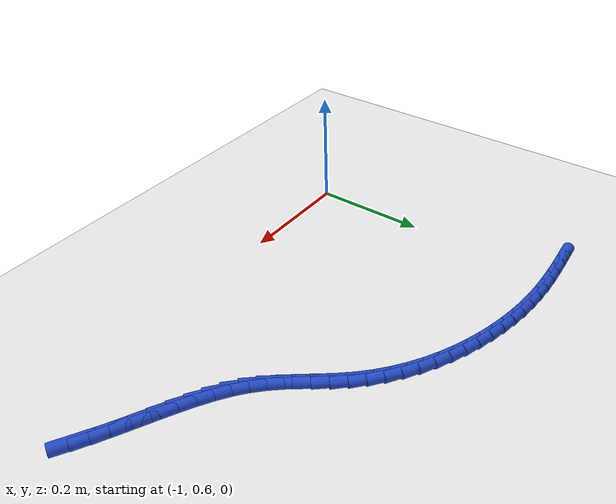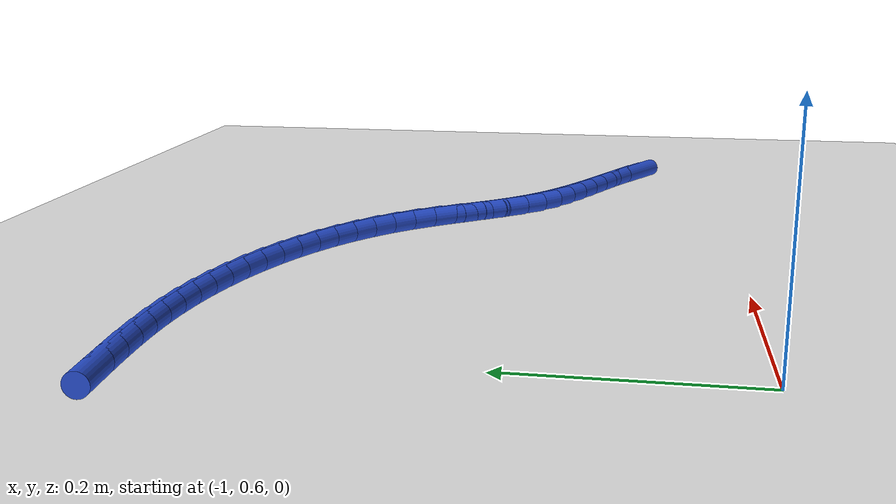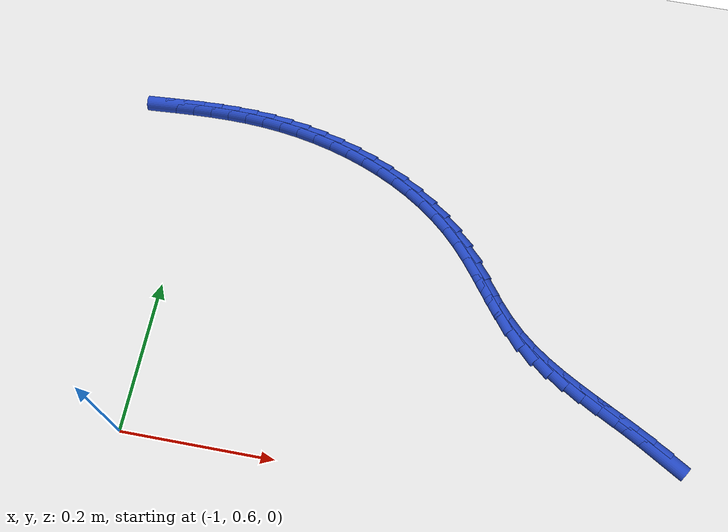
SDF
<sdf version="1.6">
 <world name="default">
  <model name="ground_plane">
   <static>1</static>
   <link name="link">
    <collision name="collision">
     <geometry><plane><normal>0 0 1</normal><size>100 100</size></plane></geometry>
     <surface><friction><ode><mu>100</mu><mu2>50</mu2></ode></friction></surface>
    </collision>
    <visual name="visual">
     <cast_shadows>0</cast_shadows>
     <geometry><plane><normal>0 0 1</normal><size>100 100</size></plane></geometry>
     <material>
      <script><uri>file://media/materials/scripts/gazebo.material</uri><name>Gazebo/WhiteGlow</name></script>
     </material>
    </visual>
   </link>
  </model>
  <model name="line">
   <link name="link_32">
    <pose>-0.3326681531695667 0.6948434382160888 0.01 0 1.57 -0.5361088494481401</pose>
    <collision name="collision">
     <geometry><cylinder><radius>0.01</radius><length>0.08</length></cylinder></geometry>
    </collision>
    <visual name="visual">
     <material>
      <script><name>Gazebo/Blue</name><uri>file://media/materials/scripts/gazebo.material</uri></script>
     </material>
     <geometry><cylinder><radius>0.01</radius><length>0.08</length></cylinder></geometry>
    </visual>
   </link>
   <link name="link_33">
    <pose>-0.3549061899537911 0.7080562256418568 0.01 0 1.57 -0.5080522299276821</pose>
    <collision name="collision">
     <geometry><cylinder><radius>0.01</radius><length>0.08</length></cylinder></geometry>
    </collision>
    <visual name="visual">
     <material>
      <script><name>Gazebo/Blue</name><uri>file://media/materials/scripts/gazebo.material</uri></script>
     </material>
     <geometry><cylinder><radius>0.01</radius><length>0.08</length></cylinder></geometry>
    </visual>
   </link>
   <link name="link_34">
    <pose>-0.377488407385569 0.7206301014757267 0.01 0 1.57 -0.48785186965999316</pose>
    <collision name="collision">
     <geometry><cylinder><radius>0.01</radius><length>0.08</length></cylinder></geometry>
    </collision>
    <visual name="visual">
     <material>
      <script><name>Gazebo/Blue</name><uri>file://media/materials/scripts/gazebo.material</uri></script>
     </material>
     <geometry><cylinder><radius>0.01</radius><length>0.08</length></cylinder></geometry>
    </visual>
   </link>
   <link name="link_35">
    <pose>-0.40026704934569296 0.7327171782866542 0.01 0 1.57 -0.48254880784526105</pose>
    <collision name="collision">
     <geometry><cylinder><radius>0.01</radius><length>0.08</length></cylinder></geometry>
    </collision>
    <visual name="visual">
     <material>
      <script><name>Gazebo/Blue</name><uri>file://media/materials/scripts/gazebo.material</uri></script>
     </material>
     <geometry><cylinder><radius>0.01</radius><length>0.08</length></cylinder></geometry>
    </visual>
   </link>
   <link name="link_36">
    <pose>-0.42300218854203875 0.7446270896594379 0.01 0 1.57 -0.4926712706315808</pose>
    <collision name="collision">
     <geometry><cylinder><radius>0.01</radius><length>0.08</length></cylinder></geometry>
    </collision>
    <visual name="visual">
     <material>
      <script><name>Gazebo/Blue</name><uri>file://media/materials/scripts/gazebo.material</uri></script>
     </material>
     <geometry><cylinder><radius>0.01</radius><length>0.08</length></cylinder></geometry>
    </visual>
   </link>
   <link name="link_37">
    <pose>-0.44544933649459584 0.7566772642727891 0.01 0 1.57 -0.5186368232506255</pose>
    <collision name="collision">
     <geometry><cylinder><radius>0.01</radius><length>0.08</length></cylinder></geometry>
    </collision>
    <visual name="visual">
     <material>
      <script><name>Gazebo/Blue</name><uri>file://media/materials/scripts/gazebo.material</uri></script>
     </material>
     <geometry><cylinder><radius>0.01</radius><length>0.08</length></cylinder></geometry>
    </visual>
   </link>
   <link name="link_38">
    <pose>-0.46736400472335476 0.7691851308054202 0.01 0 1.57 -0.5610424379605093</pose>
    <collision name="collision">
     <geometry><cylinder><radius>0.01</radius><length>0.08</length></cylinder></geometry>
    </collision>
    <visual name="visual">
     <material>
      <script><name>Gazebo/Blue</name><uri>file://media/materials/scripts/gazebo.material</uri></script>
     </material>
     <geometry><cylinder><radius>0.01</radius><length>0.08</length></cylinder></geometry>
    </visual>
   </link>
   <link name="link_39">
    <pose>-0.4885017047483057 0.7824681179360428 0.01 0 1.57 -0.6204729936003492</pose>
    <collision name="collision">
     <geometry><cylinder><radius>0.01</radius><length>0.08</length></cylinder></geometry>
    </collision>
    <visual name="visual">
     <material>
      <script><name>Gazebo/Blue</name><uri>file://media/materials/scripts/gazebo.material</uri></script>
     </material>
     <geometry><cylinder><radius>0.01</radius><length>0.08</length></cylinder></geometry>
    </visual>
   </link>
   <link name="link_40">
    <pose>-0.5086179480894385 0.7968436543433686 0.01 0 1.57 -0.6971420461137727</pose>
    <collision name="collision">
     <geometry><cylinder><radius>0.01</radius><length>0.08</length></cylinder></geometry>
    </collision>
    <visual name="visual">
     <material>
      <script><name>Gazebo/Blue</name><uri>file://media/materials/scripts/gazebo.material</uri></script>
     </material>
     <geometry><cylinder><radius>0.01</radius><length>0.08</length></cylinder></geometry>
    </visual>
   </link>
   <link name="link_41">
    <pose>-0.5274682462667437 0.8126291687061098 0.01 0 1.57 -0.7883861440349522</pose>
    <collision name="collision">
     <geometry><cylinder><radius>0.01</radius><length>0.08</length></cylinder></geometry>
    </collision>
    <visual name="visual">
     <material>
      <script><name>Gazebo/Blue</name><uri>file://media/materials/scripts/gazebo.material</uri></script>
     </material>
     <geometry><cylinder><radius>0.01</radius><length>0.08</length></cylinder></geometry>
    </visual>
   </link>
   <link name="link_42">
    <pose>-0.5448404984559726 0.8301055482420612 0.01 0 1.57 -0.8661707938594106</pose>
    <collision name="collision">
     <geometry><cylinder><radius>0.01</radius><length>0.08</length></cylinder></geometry>
    </collision>
    <visual name="visual">
     <material>
      <script><name>Gazebo/Blue</name><uri>file://media/materials/scripts/gazebo.material</uri></script>
     </material>
     <geometry><cylinder><radius>0.01</radius><length>0.08</length></cylinder></geometry>
    </visual>
   </link>
   <link name="link_43">
    <pose>-0.5609580778750421 0.8490623553936387 0.01 0 1.57 -0.9116480694812913</pose>
    <collision name="collision">
     <geometry><cylinder><radius>0.01</radius><length>0.08</length></cylinder></geometry>
    </collision>
    <visual name="visual">
     <material>
      <script><name>Gazebo/Blue</name><uri>file://media/materials/scripts/gazebo.material</uri></script>
     </material>
     <geometry><cylinder><radius>0.01</radius><length>0.08</length></cylinder></geometry>
    </visual>
   </link>
   <link name="link_44">
    <pose>-0.5763561067219904 0.86893742096646 0.01 0 1.57 -0.9256283333738456</pose>
    <collision name="collision">
     <geometry><cylinder><radius>0.01</radius><length>0.08</length></cylinder></geometry>
    </collision>
    <visual name="visual">
     <material>
      <script><name>Gazebo/Blue</name><uri>file://media/materials/scripts/gazebo.material</uri></script>
     </material>
     <geometry><cylinder><radius>0.01</radius><length>0.08</length></cylinder></geometry>
    </visual>
   </link>
   <link name="link_45">
    <pose>-0.5915764800064579 0.8891609343229893 0.01 0 1.57 -0.9089006810155099</pose>
    <collision name="collision">
     <geometry><cylinder><radius>0.01</radius><length>0.08</length></cylinder></geometry>
    </collision>
    <visual name="visual">
     <material>
      <script><name>Gazebo/Blue</name><uri>file://media/materials/scripts/gazebo.material</uri></script>
     </material>
     <geometry><cylinder><radius>0.01</radius><length>0.08</length></cylinder></geometry>
    </visual>
   </link>
   <link name="link_46">
    <pose>-0.6071610927380837 0.9091630848256897 0.01 0 1.57 -0.8614447812594681</pose>
    <collision name="collision">
     <geometry><cylinder><radius>0.01</radius><length>0.08</length></cylinder></geometry>
    </collision>
    <visual name="visual">
     <material>
      <script><name>Gazebo/Blue</name><uri>file://media/materials/scripts/gazebo.material</uri></script>
     </material>
     <geometry><cylinder><radius>0.01</radius><length>0.08</length></cylinder></geometry>
    </visual>
   </link>
   <link name="link_47">
    <pose>-0.6236518338899116 0.9283740671181507 0.01 0 1.57 -0.7893991667646886</pose>
    <collision name="collision">
     <geometry><cylinder><radius>0.01</radius><length>0.08</length></cylinder></geometry>
    </collision>
    <visual name="visual">
     <material>
      <script><name>Gazebo/Blue</name><uri>file://media/materials/scripts/gazebo.material</uri></script>
     </material>
     <geometry><cylinder><radius>0.01</radius><length>0.08</length></cylinder></geometry>
    </visual>
   </link>
   <link name="link_48">
    <pose>-0.6414669135044594 0.9463322765463587 0.01 0 1.57 -0.7159673168174842</pose>
    <collision name="collision">
     <geometry><cylinder><radius>0.01</radius><length>0.08</length></cylinder></geometry>
    </collision>
    <visual name="visual">
     <material>
      <script><name>Gazebo/Blue</name><uri>file://media/materials/scripts/gazebo.material</uri></script>
     </material>
     <geometry><cylinder><radius>0.01</radius><length>0.08</length></cylinder></geometry>
    </visual>
   </link>
   <link name="link_49">
    <pose>-0.6605829537223217 0.9629624323107783 0.01 0 1.57 -0.6463857907514414</pose>
    <collision name="collision">
     <geometry><cylinder><radius>0.01</radius><length>0.08</length></cylinder></geometry>
    </collision>
    <visual name="visual">
     <material>
      <script><name>Gazebo/Blue</name><uri>file://media/materials/scripts/gazebo.material</uri></script>
     </material>
     <geometry><cylinder><radius>0.01</radius><length>0.08</length></cylinder></geometry>
    </visual>
   </link>
   <link name="link_50">
    <pose>-0.6808780624688578 0.9782754389244361 0.01 0 1.57 -0.5805705512661311</pose>
    <collision name="collision">
     <geometry><cylinder><radius>0.01</radius><length>0.08</length></cylinder></geometry>
    </collision>
    <visual name="visual">
     <material>
      <script><name>Gazebo/Blue</name><uri>file://media/materials/scripts/gazebo.material</uri></script>
     </material>
     <geometry><cylinder><radius>0.01</radius><length>0.08</length></cylinder></geometry>
    </visual>
   </link>
   <link name="link_51">
    <pose>-0.7022303476694266 0.9922822009003589 0.01 0 1.57 -0.518322724445288</pose>
    <collision name="collision">
     <geometry><cylinder><radius>0.01</radius><length>0.08</length></cylinder></geometry>
    </collision>
    <visual name="visual">
     <material>
      <script><name>Gazebo/Blue</name><uri>file://media/materials/scripts/gazebo.material</uri></script>
     </material>
     <geometry><cylinder><radius>0.01</radius><length>0.08</length></cylinder></geometry>
    </visual>
   </link>
   <link name="link_52">
    <pose>-0.7245179172493874 1.0049936227515732 0.01 0 1.57 -0.45936177584268767</pose>
    <collision name="collision">
     <geometry><cylinder><radius>0.01</radius><length>0.08</length></cylinder></geometry>
    </collision>
    <visual name="visual">
     <material>
      <script><name>Gazebo/Blue</name><uri>file://media/materials/scripts/gazebo.material</uri></script>
     </material>
     <geometry><cylinder><radius>0.01</radius><length>0.08</length></cylinder></geometry>
    </visual>
   </link>
   <link name="link_53">
    <pose>-0.7476188791340993 1.016420608991105 0.01 0 1.57 -0.4033527587623091</pose>
    <collision name="collision">
     <geometry><cylinder><radius>0.01</radius><length>0.08</length></cylinder></geometry>
    </collision>
    <visual name="visual">
     <material>
      <script><name>Gazebo/Blue</name><uri>file://media/materials/scripts/gazebo.material</uri></script>
     </material>
     <geometry><cylinder><radius>0.01</radius><length>0.08</length></cylinder></geometry>
    </visual>
   </link>
   <link name="link_54">
    <pose>-0.7714113412489214 1.0265740641319814 0.01 0 1.57 -0.34992678481494555</pose>
    <collision name="collision">
     <geometry><cylinder><radius>0.01</radius><length>0.08</length></cylinder></geometry>
    </collision>
    <visual name="visual">
     <material>
      <script><name>Gazebo/Blue</name><uri>file://media/materials/scripts/gazebo.material</uri></script>
     </material>
     <geometry><cylinder><radius>0.01</radius><length>0.08</length></cylinder></geometry>
    </visual>
   </link>
   <link name="link_55">
    <pose>-0.7957734115192124 1.0354648926872283 0.01 0 1.57 -0.29869502922283847</pose>
    <collision name="collision">
     <geometry><cylinder><radius>0.01</radius><length>0.08</length></cylinder></geometry>
    </collision>
    <visual name="visual">
     <material>
      <script><name>Gazebo/Blue</name><uri>file://media/materials/scripts/gazebo.material</uri></script>
     </material>
     <geometry><cylinder><radius>0.01</radius><length>0.08</length></cylinder></geometry>
    </visual>
   </link>
   <link name="link_56">
    <pose>-0.8205831978703317 1.0431039991698727 0.01 0 1.57 -0.24925713159833776</pose>
    <collision name="collision">
     <geometry><cylinder><radius>0.01</radius><length>0.08</length></cylinder></geometry>
    </collision>
    <visual name="visual">
     <material>
      <script><name>Gazebo/Blue</name><uri>file://media/materials/scripts/gazebo.material</uri></script>
     </material>
     <geometry><cylinder><radius>0.01</radius><length>0.08</length></cylinder></geometry>
    </visual>
   </link>
   <link name="link_57">
    <pose>-0.8457188082276381 1.0495022880929408 0.01 0 1.57 -0.20120499011365428</pose>
    <collision name="collision">
     <geometry><cylinder><radius>0.01</radius><length>0.08</length></cylinder></geometry>
    </collision>
    <visual name="visual">
     <material>
      <script><name>Gazebo/Blue</name><uri>file://media/materials/scripts/gazebo.material</uri></script>
     </material>
     <geometry><cylinder><radius>0.01</radius><length>0.08</length></cylinder></geometry>
    </visual>
   </link>
   <link name="link_58">
    <pose>-0.871058350516491 1.0546706639694592 0.01 0 1.57 -0.1541228547095058</pose>
    <collision name="collision">
     <geometry><cylinder><radius>0.01</radius><length>0.08</length></cylinder></geometry>
    </collision>
    <visual name="visual">
     <material>
      <script><name>Gazebo/Blue</name><uri>file://media/materials/scripts/gazebo.material</uri></script>
     </material>
     <geometry><cylinder><radius>0.01</radius><length>0.08</length></cylinder></geometry>
    </visual>
   </link>
   <link name="link_59">
    <pose>-0.8964799326622497 1.0586200313124545 0.01 0 1.57 -0.10758885201200187</pose>
    <collision name="collision">
     <geometry><cylinder><radius>0.01</radius><length>0.08</length></cylinder></geometry>
    </collision>
    <visual name="visual">
     <material>
      <script><name>Gazebo/Blue</name><uri>file://media/materials/scripts/gazebo.material</uri></script>
     </material>
     <geometry><cylinder><radius>0.01</radius><length>0.08</length></cylinder></geometry>
    </visual>
   </link>
   <link name="link_60">
    <pose>-0.9218617835682248 1.0613614212109321 0.01 0 1.57 -0.06273153461965056</pose>
    <collision name="collision">
     <geometry><cylinder><radius>0.01</radius><length>0.08</length></cylinder></geometry>
    </collision>
    <visual name="visual">
     <material>
      <script><name>Gazebo/Blue</name><uri>file://media/materials/scripts/gazebo.material</uri></script>
     </material>
     <geometry><cylinder><radius>0.01</radius><length>0.08</length></cylinder></geometry>
    </visual>
   </link>
   <link name="link_61">
    <pose>-0.9471225468612412 1.062948149592764 0.01 0 1.57 -0.02339901956416298</pose>
    <collision name="collision">
     <geometry><cylinder><radius>0.01</radius><length>0.08</length></cylinder></geometry>
    </collision>
    <visual name="visual">
     <material>
      <script><name>Gazebo/Blue</name><uri>file://media/materials/scripts/gazebo.material</uri></script>
     </material>
     <geometry><cylinder><radius>0.01</radius><length>0.08</length></cylinder></geometry>
    </visual>
   </link>
   <link name="link_62">
    <pose>-0.9722796708654999 1.0635369090848177 0.01 0 1.57 0.00944782095628531</pose>
    <collision name="collision">
     <geometry><cylinder><radius>0.01</radius><length>0.08</length></cylinder></geometry>
    </collision>
    <visual name="visual">
     <material>
      <script><name>Gazebo/Blue</name><uri>file://media/materials/scripts/gazebo.material</uri></script>
     </material>
     <geometry><cylinder><radius>0.01</radius><length>0.08</length></cylinder></geometry>
    </visual>
   </link>
   <link name="link_63">
    <pose>-0.9973654222455579 1.0632998963451596 0.01 0 1.57 0.0355422155402699</pose>
    <collision name="collision">
     <geometry><cylinder><radius>0.01</radius><length>0.08</length></cylinder></geometry>
    </collision>
    <visual name="visual">
     <material>
      <script><name>Gazebo/Blue</name><uri>file://media/materials/scripts/gazebo.material</uri></script>
     </material>
     <geometry><cylinder><radius>0.01</radius><length>0.08</length></cylinder></geometry>
    </visual>
   </link>
   <link name="link_64">
    <pose>-1.0224120676659734 1.0624093080318564 0.01 0 1.57 0.05473671644555952</pose>
    <collision name="collision">
     <geometry><cylinder><radius>0.01</radius><length>0.08</length></cylinder></geometry>
    </collision>
    <visual name="visual">
     <material>
      <script><name>Gazebo/Blue</name><uri>file://media/materials/scripts/gazebo.material</uri></script>
     </material>
     <geometry><cylinder><radius>0.01</radius><length>0.08</length></cylinder></geometry>
    </visual>
   </link>
   <link name="link_65">
    <pose>-1.0474518737913037 1.061037340802974 0.01 0 1.57 0.06697066584915144</pose>
    <collision name="collision">
     <geometry><cylinder><radius>0.01</radius><length>0.08</length></cylinder></geometry>
    </collision>
    <visual name="visual">
     <material>
      <script><name>Gazebo/Blue</name><uri>file://media/materials/scripts/gazebo.material</uri></script>
     </material>
     <geometry><cylinder><radius>0.01</radius><length>0.08</length></cylinder></geometry>
    </visual>
   </link>
  </model>
 </world>
</sdf>
